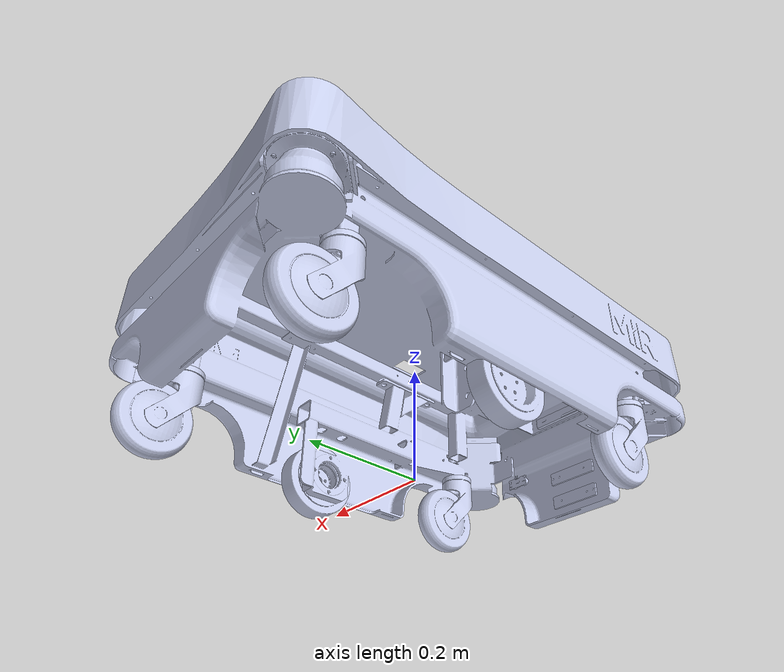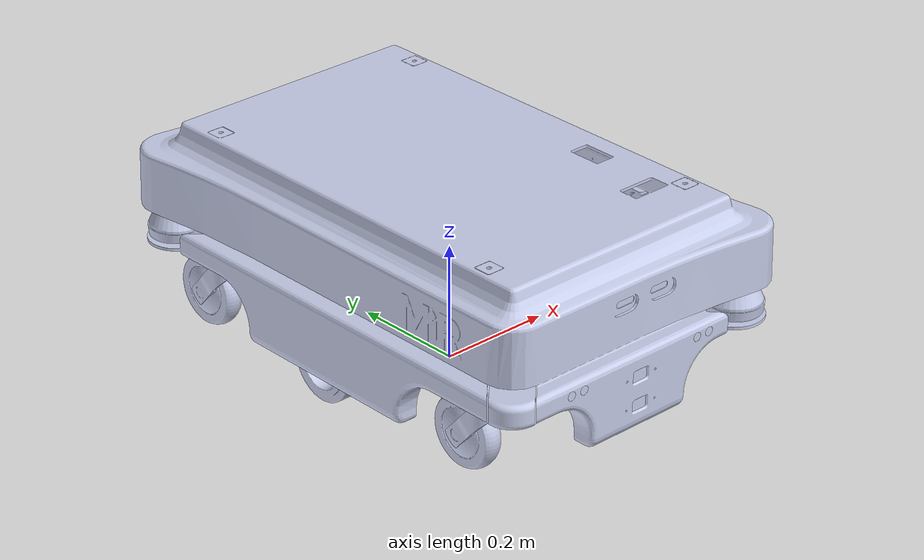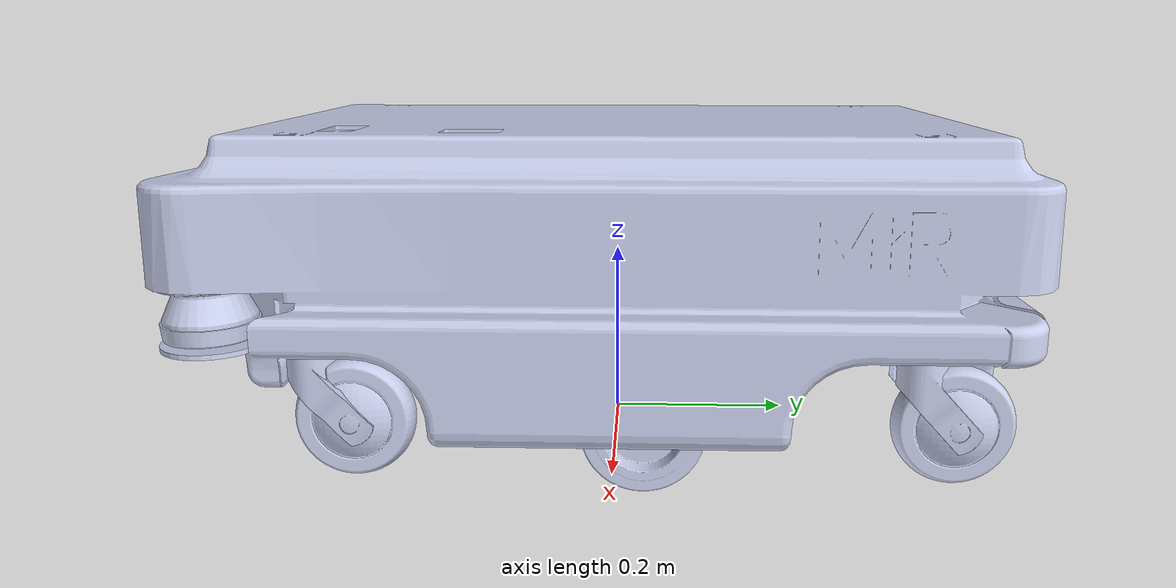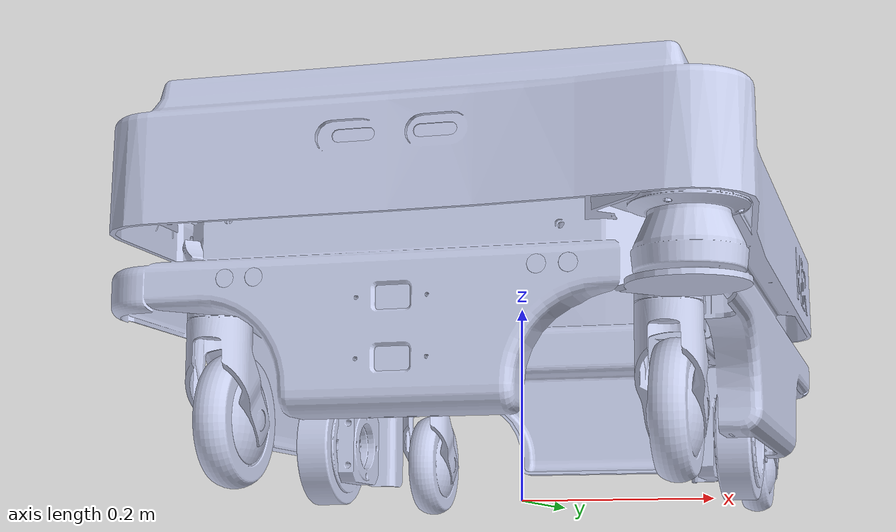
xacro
<?xml version="1.0"?>
<robot xmlns:xacro="http://www.ros.org/wiki/xacro" name="maze">

  <!-- xacro include     -->
  <xacro:include filename="$(find maze_gazebo)/urdf/drive_wheel_transmission.xacro" />
  <xacro:include filename="$(find maze_gazebo)/urdf/castor_transmission.xacro" />
  <xacro:include filename="$(find maze_gazebo)/urdf/castor_holder_transmission.xacro" />
  <xacro:include filename="$(find maze_gazebo)/urdf/gazebo_plugin.xacro" />

  <link
    name="base_link">
    <inertial>
      <origin
        xyz="-0.0028869526654115 0.254001519517849 0.00673364367028377"
        rpy="0 0 0" />
      <mass
        value="100" />
      <inertia
        ixx="0.3678033044408"
        ixy="0.000139120659866531"
        ixz="-0.00914770283838957"
        iyy="0.501928528645378"
        iyz="-0.000108362473444537"
        izz="0.163130261499752" />
    </inertial>
    <visual>
      <origin
        xyz="0 0 0"
        rpy="0 0 0" />
      <geometry>
        <mesh
          filename="package://maze_gazebo/meshes/base_link.STL" />
      </geometry>
      <material
        name="">
        <color
          rgba="0.792156862745098 0.819607843137255 0.933333333333333 1" />
      </material>
    </visual>
    <collision>
      <origin
        xyz="0 0 0"
        rpy="0 0 0" />
      <geometry>
        <mesh
          filename="package://maze_gazebo/meshes/base_link.STL" />
      </geometry>
    </collision>
  </link>

  <link name="imu_link"/>

  <joint
    name="imu_joint"
    type="fixed">
    <origin
      xyz="0.0 0.0 0.0"
      rpy="0.0 0 0" />
    <parent
      link="base_link" />
    <child
      link="imu_link" />
    <axis
      xyz="0 0 0" />
  </joint>

  <link
    name="left_wheel_link">
    <inertial>
      <origin
        xyz="-2.08166817117217E-17 0.0219259448586958 6.93889390390723E-18"
        rpy="0 0 0" />
      <mass
        value="10" />
      <inertia
        ixx="0.000414738647732841"
        ixy="6.4549731850148E-20"
        ixz="-2.71050543121376E-20"
        iyy="0.000767140680710609"
        iyz="3.80672892035092E-19"
        izz="0.000414738647732841" />
    </inertial>
    <visual>
      <origin
        xyz="0 0 0"
        rpy="0 0 0" />
      <geometry>
        <mesh
          filename="package://maze_gazebo/meshes/left_wheel_link.STL" />
      </geometry>
      <material
        name="">
        <color
          rgba="0.792156862745098 0.819607843137255 0.933333333333333 1" />
      </material>
    </visual>
    <collision>
      <origin
        xyz="0 0 0"
        rpy="0 0 0" />
      <geometry>
        <mesh
          filename="package://maze_gazebo/meshes/left_wheel_link.STL" />
      </geometry>
    </collision>
  </link>
  <joint
    name="left_wheel_joint"
    type="continuous">
    <origin
      xyz="0.2452 0.032591 0.061977"
      rpy="3.1416 0.31416 -1.5708" />
    <parent
      link="base_link" />
    <child
      link="left_wheel_link" />
    <axis
      xyz="0 1 0" />
  </joint>
  <link
    name="right_wheel_link">
    <inertial>
      <origin
        xyz="-1.04083408558608E-17 0.0219259448586958 -6.93889390390723E-17"
        rpy="0 0 0" />
      <mass
        value="10" />
      <inertia
        ixx="0.000414738647732841"
        ixy="1.64957862874801E-19"
        ixz="6.7762635780344E-21"
        iyy="0.00076714068071061"
        iyz="-8.30489493552148E-19"
        izz="0.000414738647732841" />
    </inertial>
    <visual>
      <origin
        xyz="0 0 0"
        rpy="0 0 0" />
      <geometry>
        <mesh
          filename="package://maze_gazebo/meshes/right_wheel_link.STL" />
      </geometry>
      <material
        name="">
        <color
          rgba="0.792156862745098 0.819607843137255 0.933333333333333 1" />
      </material>
    </visual>
    <collision>
      <origin
        xyz="0 0 0"
        rpy="0 0 0" />
      <geometry>
        <mesh
          filename="package://maze_gazebo/meshes/right_wheel_link.STL" />
      </geometry>
    </collision>
  </link>
  <joint
    name="right_wheel_joint"
    type="continuous">
    <origin
      xyz="-0.2452 0.032591 0.061977"
      rpy="3.1416 0.31416 1.5708" />
    <parent
      link="base_link" />
    <child
      link="right_wheel_link" />
    <axis
      xyz="0 1 0" />
  </joint>
  <link
    name="front_left_holder_link">
    <inertial>
      <origin
        xyz="-0.00943000039874498 0.0418885045472308 -7.92953525896589E-08"
        rpy="0 0 0" />
      <mass
        value="5" />
      <inertia
        ixx="0.000188864689361723"
        ixy="5.48092823016774E-05"
        ixz="-2.90932771313292E-10"
        iyy="8.99090582990319E-05"
        iyz="4.693844090958E-10"
        izz="0.000192807336296954" />
    </inertial>
    <visual>
      <origin
        xyz="0 0 0"
        rpy="0 0 0" />
      <geometry>
        <mesh
          filename="package://maze_gazebo/meshes/front_left_holder_link.STL" />
      </geometry>
      <material
        name="">
        <color
          rgba="0.792156862745098 0.819607843137255 0.933333333333333 1" />
      </material>
    </visual>
    <collision>
      <origin
        xyz="0 0 0"
        rpy="0 0 0" />
      <geometry>
        <mesh
          filename="package://maze_gazebo/meshes/front_left_holder_link.STL" />
      </geometry>
    </collision>
  </link>
  <joint
    name="front_left_holder_joint"
    type="continuous">
    <origin
      xyz="0.20525 -0.30341 0.16147"
      rpy="-1.5708 0 -1.5708" />
    <parent
      link="base_link" />
    <child
      link="front_left_holder_link" />
    <axis
      xyz="0 0 1" />
  </joint>
  <link
    name="front_left_castor_link">
    <inertial>
      <origin
        xyz="-9.28563210131905E-05 0.000101299411731759 6.85127798938368E-09"
        rpy="0 0 0" />
      <mass
        value="5" />
      <inertia
        ixx="0.000389246550993186"
        ixy="-1.33597214859002E-06"
        ixz="-9.15816252780354E-11"
        iyy="0.000389481196798406"
        iyz="-4.42427927626012E-11"
        izz="0.000700624875582138" />
    </inertial>
    <visual>
      <origin
        xyz="0 0 0"
        rpy="0 0 0" />
      <geometry>
        <mesh
          filename="package://maze_gazebo/meshes/front_left_castor_link.STL" />
      </geometry>
      <material
        name="">
        <color
          rgba="0.792156862745098 0.819607843137255 0.933333333333333 1" />
      </material>
    </visual>
    <collision>
      <origin
        xyz="0 0 0"
        rpy="0 0 0" />
      <geometry>
        <mesh
          filename="package://maze_gazebo/meshes/front_left_castor_link.STL" />
      </geometry>
    </collision>
  </link>
  <joint
    name="front_left_castor_joint"
    type="continuous">
    <origin
      xyz="-0.038115 0.097831 0"
      rpy="0 0 0" />
    <parent
      link="front_left_holder_link" />
    <child
      link="front_left_castor_link" />
    <axis
      xyz="0 1 0" />
  </joint>
  <link
    name="front_right_holder_link">
    <inertial>
      <origin
        xyz="-0.00943000043442804 0.041888504621089 -7.9319022933122E-08"
        rpy="0 0 0" />
      <mass
        value="5" />
      <inertia
        ixx="0.000188864689908781"
        ixy="5.48092825461241E-05"
        ixz="-2.91010398715853E-10"
        iyy="8.99090584618609E-05"
        iyz="4.69544313247606E-10"
        izz="0.000192807336902051" />
    </inertial>
    <visual>
      <origin
        xyz="0 0 0"
        rpy="0 0 0" />
      <geometry>
        <mesh
          filename="package://maze_gazebo/meshes/front_right_holder_link.STL" />
      </geometry>
      <material
        name="">
        <color
          rgba="0.792156862745098 0.819607843137255 0.933333333333333 1" />
      </material>
    </visual>
    <collision>
      <origin
        xyz="0 0 0"
        rpy="0 0 0" />
      <geometry>
        <mesh
          filename="package://maze_gazebo/meshes/front_right_holder_link.STL" />
      </geometry>
    </collision>
  </link>
  <joint
    name="front_right_holder_joint"
    type="continuous">
    <origin
      xyz="-0.20525 -0.30341 0.16147"
      rpy="-1.5708 0 -1.5708" />
    <parent
      link="base_link" />
    <child
      link="front_right_holder_link" />
    <axis
      xyz="0 0 1" />
  </joint>
  <link
    name="front_right_castor_link">
    <inertial>
      <origin
        xyz="-9.28563210131905E-05 0.000101299411731717 6.85127801713925E-09"
        rpy="0 0 0" />
      <mass
        value="5" />
      <inertia
        ixx="0.000389246550993186"
        ixy="-1.33597214858998E-06"
        ixz="-9.15816243250947E-11"
        iyy="0.000389481196798407"
        iyz="-4.42427935403515E-11"
        izz="0.000700624875582138" />
    </inertial>
    <visual>
      <origin
        xyz="0 0 0"
        rpy="0 0 0" />
      <geometry>
        <mesh
          filename="package://maze_gazebo/meshes/front_right_castor_link.STL" />
      </geometry>
      <material
        name="">
        <color
          rgba="0.792156862745098 0.819607843137255 0.933333333333333 1" />
      </material>
    </visual>
    <collision>
      <origin
        xyz="0 0 0"
        rpy="0 0 0" />
      <geometry>
        <mesh
          filename="package://maze_gazebo/meshes/front_right_castor_link.STL" />
      </geometry>
    </collision>
  </link>
  <joint
    name="front_right_castor_joint"
    type="continuous">
    <origin
      xyz="-0.038115 0.097831 0"
      rpy="0 0 0" />
    <parent
      link="front_right_holder_link" />
    <child
      link="front_right_castor_link" />
    <axis
      xyz="0 1 0" />
  </joint>
  <link
    name="back_left_holder_link">
    <inertial>
      <origin
        xyz="-0.0094300004344281 0.0418885046210891 -7.93190229608776E-08"
        rpy="0 0 0" />
      <mass
        value="5" />
      <inertia
        ixx="0.000188864689908782"
        ixy="5.48092825461243E-05"
        ixz="-2.91010398864748E-10"
        iyy="8.99090584618611E-05"
        iyz="4.69544313357925E-10"
        izz="0.000192807336902051" />
    </inertial>
    <visual>
      <origin
        xyz="0 0 0"
        rpy="0 0 0" />
      <geometry>
        <mesh
          filename="package://maze_gazebo/meshes/back_left_holder_link.STL" />
      </geometry>
      <material
        name="">
        <color
          rgba="0.792156862745098 0.819607843137255 0.933333333333333 1" />
      </material>
    </visual>
    <collision>
      <origin
        xyz="0 0 0"
        rpy="0 0 0" />
      <geometry>
        <mesh
          filename="package://maze_gazebo/meshes/back_left_holder_link.STL" />
      </geometry>
    </collision>
  </link>
  <joint
    name="back_left_holder_joint"
    type="continuous">
    <origin
      xyz="0.205 0.31 0.1605"
      rpy="-1.5708 0 -1.5708" />
    <parent
      link="base_link" />
    <child
      link="back_left_holder_link" />
    <axis
      xyz="0 0 1" />
  </joint>
  <link
    name="back_left_castor_link">
    <inertial>
      <origin
        xyz="-9.2856321013135E-05 0.000101299411731717 6.85127801713925E-09"
        rpy="0 0 0" />
      <mass
        value="5" />
      <inertia
        ixx="0.000389246550993186"
        ixy="-1.33597214859004E-06"
        ixz="-9.15816243909476E-11"
        iyy="0.000389481196798407"
        iyz="-4.42427926356539E-11"
        izz="0.000700624875582138" />
    </inertial>
    <visual>
      <origin
        xyz="0 0 0"
        rpy="0 0 0" />
      <geometry>
        <mesh
          filename="package://maze_gazebo/meshes/back_left_castor_link.STL" />
      </geometry>
      <material
        name="">
        <color
          rgba="0.792156862745098 0.819607843137255 0.933333333333333 1" />
      </material>
    </visual>
    <collision>
      <origin
        xyz="0 0 0"
        rpy="0 0 0" />
      <geometry>
        <mesh
          filename="package://maze_gazebo/meshes/back_left_castor_link.STL" />
      </geometry>
    </collision>
  </link>
  <joint
    name="back_left_castor_joint"
    type="continuous">
    <origin
      xyz="-0.038115 0.097831 0"
      rpy="0 0 0" />
    <parent
      link="back_left_holder_link" />
    <child
      link="back_left_castor_link" />
    <axis
      xyz="0 1 0" />
  </joint>
  <link
    name="back_right_holder_link">
    <inertial>
      <origin
        xyz="-0.00942999097906383 0.0418884672695253 -7.16526934729789E-08"
        rpy="0 0 0" />
      <mass
        value="5" />
      <inertia
        ixx="0.000188864380636178"
        ixy="5.48091770395005E-05"
        ixz="-2.71913406948834E-10"
        iyy="8.99090133197262E-05"
        iyz="3.89406013638515E-10"
        izz="0.000192807014745861" />
    </inertial>
    <visual>
      <origin
        xyz="0 0 0"
        rpy="0 0 0" />
      <geometry>
        <mesh
          filename="package://maze_gazebo/meshes/back_right_holder_link.STL" />
      </geometry>
      <material
        name="">
        <color
          rgba="0.792156862745098 0.819607843137255 0.933333333333333 1" />
      </material>
    </visual>
    <collision>
      <origin
        xyz="0 0 0"
        rpy="0 0 0" />
      <geometry>
        <mesh
          filename="package://maze_gazebo/meshes/back_right_holder_link.STL" />
      </geometry>
    </collision>
  </link>
  <joint
    name="back_right_holder_joint"
    type="continuous">
    <origin
      xyz="-0.205 0.31 0.1605"
      rpy="-1.5708 0 -1.5708" />
    <parent
      link="base_link" />
    <child
      link="back_right_holder_link" />
    <axis
      xyz="0 0 1" />
  </joint>
  <link
    name="back_right_castor_link">
    <inertial>
      <origin
        xyz="-9.28563210130795E-05 0.000101299411731759 6.85127801713925E-09"
        rpy="0 0 0" />
      <mass
        value="5" />
      <inertia
        ixx="0.000389246550993186"
        ixy="-1.33597214858997E-06"
        ixz="-9.15816252797854E-11"
        iyy="0.000389481196798407"
        iyz="-4.42427916696972E-11"
        izz="0.000700624875582138" />
    </inertial>
    <visual>
      <origin
        xyz="0 0 0"
        rpy="0 0 0" />
      <geometry>
        <mesh
          filename="package://maze_gazebo/meshes/back_right_castor_link.STL" />
      </geometry>
      <material
        name="">
        <color
          rgba="0.792156862745098 0.819607843137255 0.933333333333333 1" />
      </material>
    </visual>
    <collision>
      <origin
        xyz="0 0 0"
        rpy="0 0 0" />
      <geometry>
        <mesh
          filename="package://maze_gazebo/meshes/back_right_castor_link.STL" />
      </geometry>
    </collision>
  </link>
  <joint
    name="back_right_castor_joint"
    type="continuous">
    <origin
      xyz="-0.038115 0.097831 0"
      rpy="0 0 0" />
    <parent
      link="back_right_holder_link" />
    <child
      link="back_right_castor_link" />
    <axis
      xyz="0 1 0" />
  </joint>
  <link
    name="front_lidar_link">
    <inertial>
      <origin
        xyz="8.51201189117079E-07 -0.0382360550578659 0.00253382888216747"
        rpy="0 0 0" />
      <mass
        value="0.99478483013009" />
      <inertia
        ixx="0.00207441181473986"
        ixy="1.2183925548538E-08"
        ixz="-3.06157051925982E-08"
        iyy="0.00130250432991971"
        iyz="-1.97826766383176E-06"
        izz="0.00204749914416029" />
    </inertial>
    <visual>
      <origin
        xyz="0 0 0"
        rpy="0 0 0" />
      <geometry>
        <mesh
          filename="package://maze_gazebo/meshes/front_lidar_link.STL" />
      </geometry>
      <material
        name="">
        <color
          rgba="0.792156862745098 0.819607843137255 0.933333333333333 1" />
      </material>
    </visual>
    <collision>
      <origin
        xyz="0 0 0"
        rpy="0 0 0" />
      <geometry>
        <mesh
          filename="package://maze_gazebo/meshes/front_lidar_link.STL" />
      </geometry>
    </collision>
  </link>
  <joint
    name="front_lidar_joint"
    type="fixed">
    <origin
      xyz="0.23711 -0.39365 0.19206"
      rpy="-1.5708 0 0.78523" />
    <parent
      link="base_link" />
    <child
      link="front_lidar_link" />
    <axis
      xyz="0 0 0" />
  </joint>
  <link
    name="back_lidar_link">
    <inertial>
      <origin
        xyz="8.5120118942239E-07 -0.038236055057866 0.00253382888216869"
        rpy="0 0 0" />
      <mass
        value="0.994784830130092" />
      <inertia
        ixx="0.00207441181474926"
        ixy="1.21839258570294E-08"
        ixz="-3.06157085219663E-08"
        iyy="0.00130250432992991"
        iyz="-1.97826766347885E-06"
        izz="0.0020474991441613" />
    </inertial>
    <visual>
      <origin
        xyz="0 0 0"
        rpy="0 0 0" />
      <geometry>
        <mesh
          filename="package://maze_gazebo/meshes/back_lidar_link.STL" />
      </geometry>
      <material
        name="">
        <color
          rgba="0.792156862745098 0.819607843137255 0.933333333333333 1" />
      </material>
    </visual>
    <collision>
      <origin
        xyz="0 0 0"
        rpy="0 0 0" />
      <geometry>
        <mesh
          filename="package://maze_gazebo/meshes/back_lidar_link.STL" />
      </geometry>
    </collision>
  </link>
  <joint
    name="back_lidar_joint"
    type="fixed">
    <origin
      xyz="-0.23711 0.39365 0.19206"
      rpy="-1.5708 0 -2.3564" />
    <parent
      link="base_link" />
    <child
      link="back_lidar_link" />
    <axis
      xyz="0 0 0" />
  </joint>
  <link
    name="front_depth_sense_link">
    <inertial>
      <origin
        xyz="0.00639807454467763 0.000259185843232146 0.00402276187249434"
        rpy="0 0 0" />
      <mass
        value="0.0156859297221197" />
      <inertia
        ixx="6.16300882610128E-07"
        ixy="4.12499684223477E-07"
        ixz="-4.33030175755976E-08"
        iyy="2.39004372893522E-05"
        iyz="1.73130955374426E-09"
        izz="2.4301132150604E-05" />
    </inertial>
    <visual>
      <origin
        xyz="0 0 0"
        rpy="0 0 0" />
      <geometry>
        <mesh
          filename="package://maze_gazebo/meshes/front_depth_sense_link.STL" />
      </geometry>
      <material
        name="">
        <color
          rgba="0.792156862745098 0.819607843137255 0.933333333333333 1" />
      </material>
    </visual>
    <collision>
      <origin
        xyz="0 0 0"
        rpy="0 0 0" />
      <geometry>
        <mesh
          filename="package://maze_gazebo/meshes/front_depth_sense_link.STL" />
      </geometry>
    </collision>
  </link>
  <joint
    name="front_depth_sense_joint"
    type="fixed">
    <origin
      xyz="0.0036662 -0.41333 0.27884"
      rpy="1.5533 0 0" />
    <parent
      link="base_link" />
    <child
      link="front_depth_sense_link" />
    <axis
      xyz="0 0 0" />
  </joint>
  <link
    name="front_left_us_link">
    <inertial>
      <origin
        xyz="3.16719926685138E-06 1.07108254000232E-05 0.00564761949829307"
        rpy="0 0 0" />
      <mass
        value="0.00659226374288694" />
      <inertia
        ixx="2.62164366417446E-07"
        ixy="2.19454243662852E-10"
        ixz="1.68518136394502E-10"
        iyy="1.29017463006738E-06"
        iyz="4.85941108653776E-09"
        izz="1.31002616867467E-06" />
    </inertial>
    <visual>
      <origin
        xyz="0 0 0"
        rpy="0 0 0" />
      <geometry>
        <mesh
          filename="package://maze_gazebo/meshes/front_left_us_link.STL" />
      </geometry>
      <material
        name="">
        <color
          rgba="0.792156862745098 0.819607843137255 0.933333333333333 1" />
      </material>
    </visual>
    <collision>
      <origin
        xyz="0 0 0"
        rpy="0 0 0" />
      <geometry>
        <mesh
          filename="package://maze_gazebo/meshes/front_left_us_link.STL" />
      </geometry>
    </collision>
  </link>
  <joint
    name="front_left_us_joint"
    type="fixed">
    <origin
      xyz="0.13289 -0.41252 0.166"
      rpy="1.5708 0 0" />
    <parent
      link="base_link" />
    <child
      link="front_left_us_link" />
    <axis
      xyz="0 0 0" />
  </joint>
  <link
    name="front_right_us_link">
    <inertial>
      <origin
        xyz="3.16719926674036E-06 1.07108254000232E-05 0.00564761949829301"
        rpy="0 0 0" />
      <mass
        value="0.00659226374288695" />
      <inertia
        ixx="2.62164366417447E-07"
        ixy="2.19454243663251E-10"
        ixz="1.68518136375718E-10"
        iyy="1.29017463006738E-06"
        iyz="4.85941108653799E-09"
        izz="1.31002616867467E-06" />
    </inertial>
    <visual>
      <origin
        xyz="0 0 0"
        rpy="0 0 0" />
      <geometry>
        <mesh
          filename="package://maze_gazebo/meshes/front_right_us_link.STL" />
      </geometry>
      <material
        name="">
        <color
          rgba="0.792156862745098 0.819607843137255 0.933333333333333 1" />
      </material>
    </visual>
    <collision>
      <origin
        xyz="0 0 0"
        rpy="0 0 0" />
      <geometry>
        <mesh
          filename="package://maze_gazebo/meshes/front_right_us_link.STL" />
      </geometry>
    </collision>
  </link>
  <joint
    name="front_right_us_joint"
    type="fixed">
    <origin
      xyz="-0.13291 -0.41252 0.166"
      rpy="-1.5708 0 3.1416" />
    <parent
      link="base_link" />
    <child
      link="front_right_us_link" />
    <axis
      xyz="0 0 0" />
  </joint>
  <link
    name="docking_point_link">
    <inertial>
      <origin
        xyz="-3.36712537192529E-17 0.025 -4.44089209850063E-16"
        rpy="0 0 0" />
      <mass
        value="0.0197436309804578" />
      <inertia
        ixx="1.06382161218638E-06"
        ixy="1.96745794540425E-21"
        ixz="-5.22424584653053E-19"
        iyy="1.63446093202912E-05"
        iyz="-1.70192980777725E-21"
        izz="1.7355781249863E-05" />
    </inertial>
    <visual>
      <origin
        xyz="0 0 0"
        rpy="0 0 0" />
      <geometry>
        <mesh
          filename="package://maze_gazebo/meshes/docking_point_link.STL" />
      </geometry>
      <material
        name="">
        <color
          rgba="0.792156862745098 0.819607843137255 0.933333333333333 1" />
      </material>
    </visual>
    <collision>
      <origin
        xyz="0 0 0"
        rpy="0 0 0" />
      <geometry>
        <mesh
          filename="package://maze_gazebo/meshes/docking_point_link.STL" />
      </geometry>
    </collision>
  </link>
  <joint
    name="docking_point_joint"
    type="fixed">
    <origin
      xyz="-6.0377E-05 -0.42002 0.145"
      rpy="-1.5708 0 3.1416" />
    <parent
      link="base_link" />
    <child
      link="docking_point_link" />
    <axis
      xyz="0 0 0" />
  </joint>

</robot>
